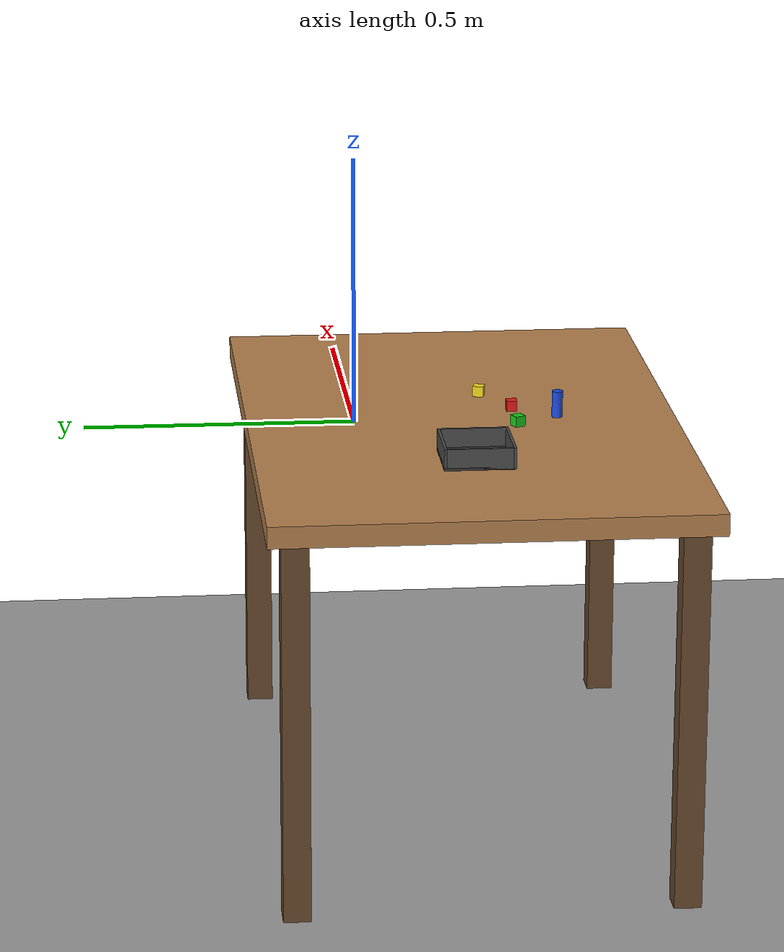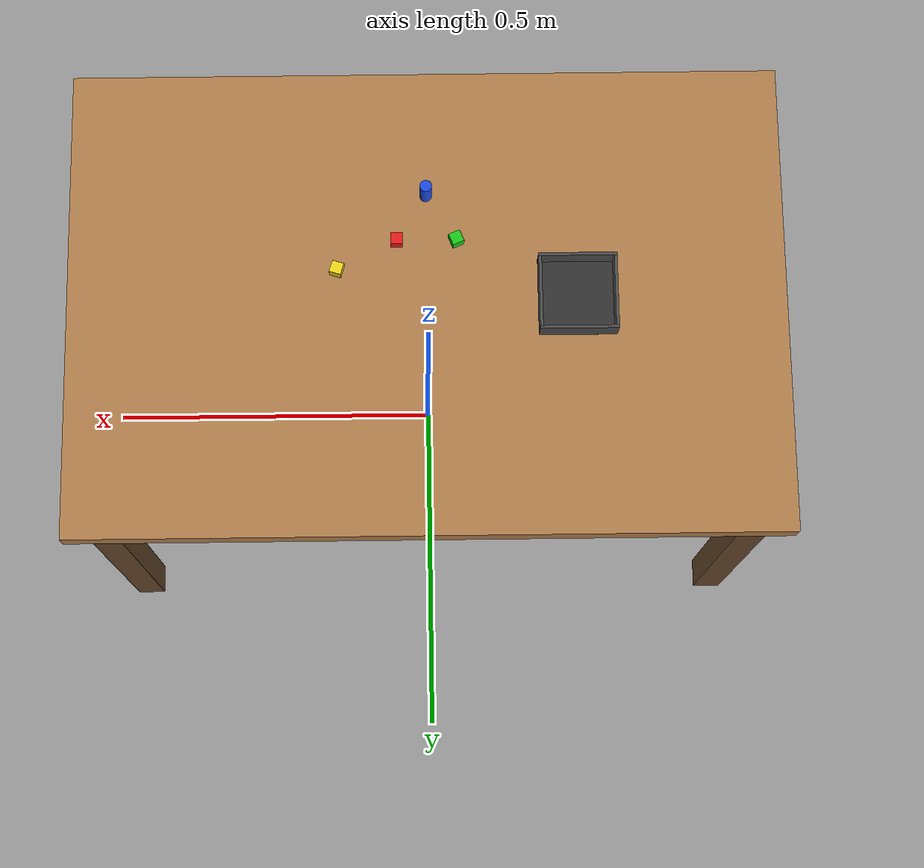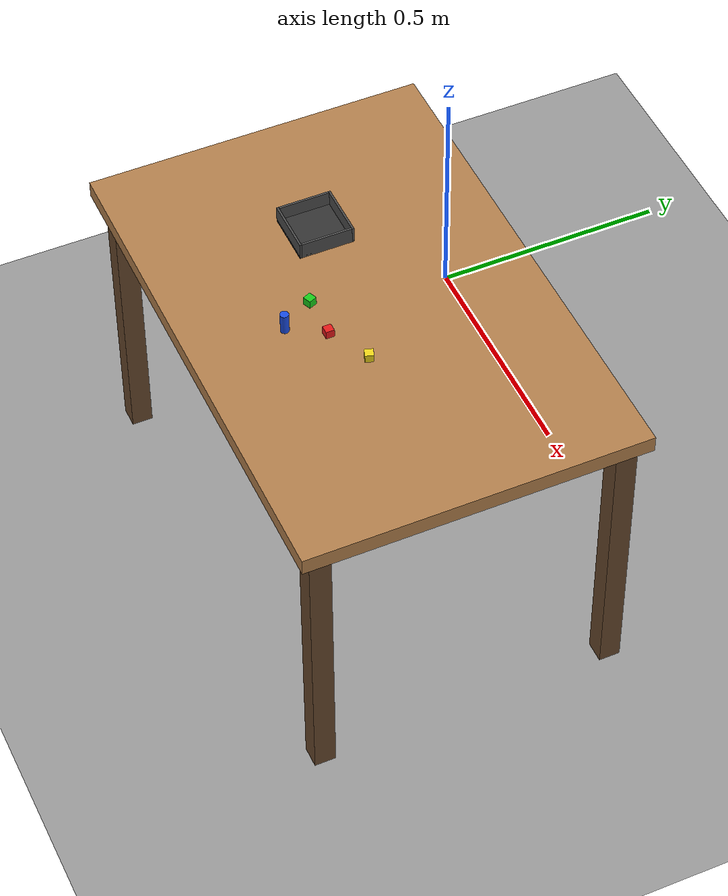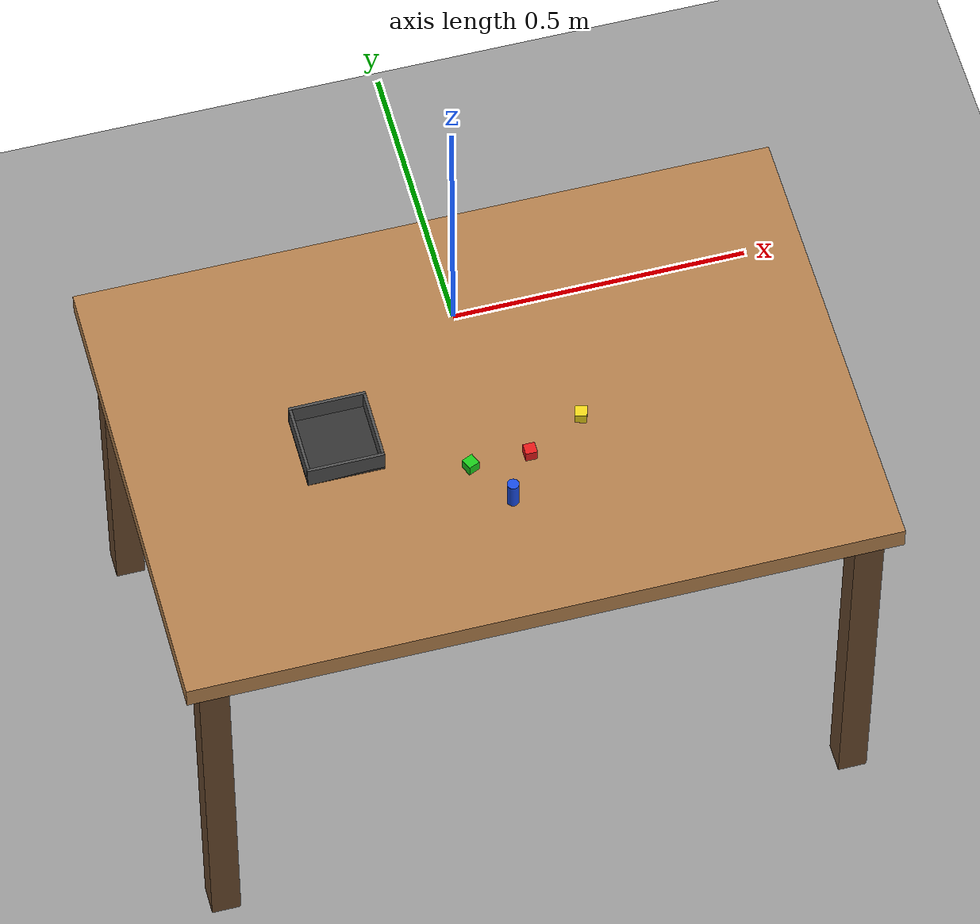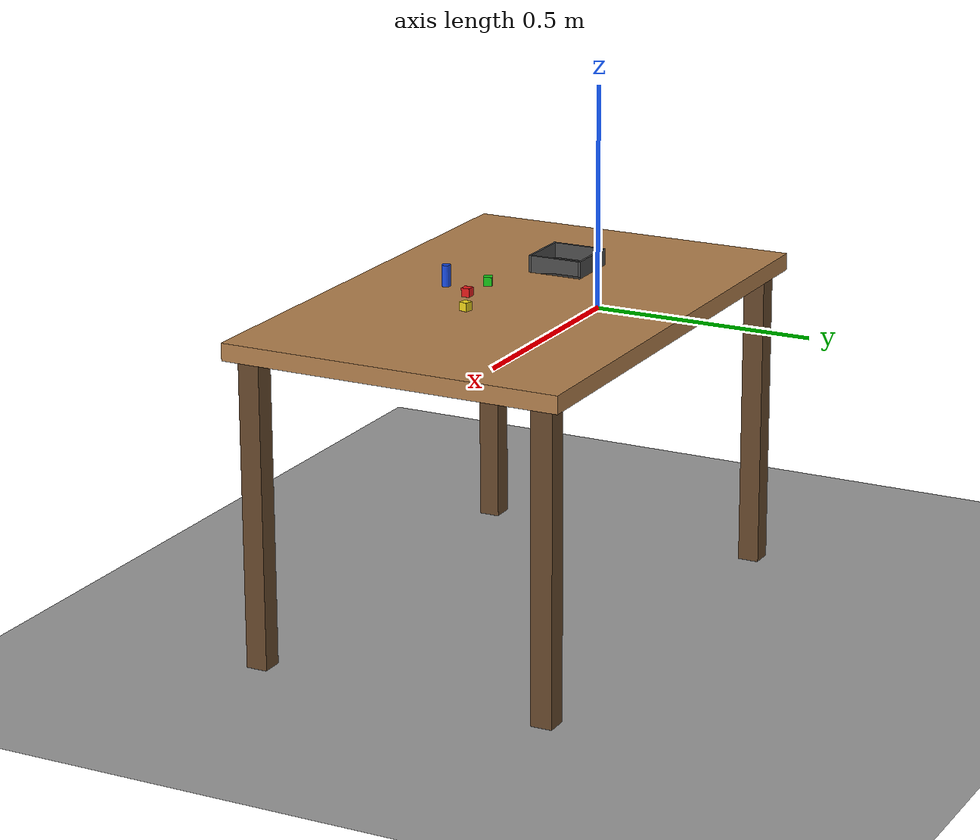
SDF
<?xml version="1.0"?>
<sdf version="1.6">
  <world name="pick_place">
    <physics name="1ms" type="ignored">
      <max_step_size>0.001</max_step_size>
      <real_time_factor>1.0</real_time_factor>
    </physics>

    <gui fullscreen="0">

      <!-- 3D scene -->
      <plugin filename="MinimalScene" name="3D View">
        <gz-gui>
          <title>3D View</title>
          <property type="bool" key="showTitleBar">false</property>
          <property type="string" key="state">docked</property>
        </gz-gui>

        <engine>ogre2</engine>
        <scene>scene</scene>
        <ambient_light>0.4 0.4 0.4</ambient_light>
        <background_color>0.8 0.8 0.8</background_color>
        <camera_pose>0.9 -1.1 0.6 0 0.4 2.36</camera_pose>
        <camera_clip>
          <near>0.25</near>
          <far>25000</far>
        </camera_clip>
      </plugin>

      <!-- Plugins that add functionality to the scene -->
      <plugin filename="EntityContextMenuPlugin" name="Entity context menu">
        <gz-gui>
          <property key="state" type="string">floating</property>
          <property key="width" type="double">5</property>
          <property key="height" type="double">5</property>
          <property key="showTitleBar" type="bool">false</property>
        </gz-gui>
      </plugin>
      <plugin filename="GzSceneManager" name="Scene Manager">
        <gz-gui>
          <property key="resizable" type="bool">false</property>
          <property key="width" type="double">5</property>
          <property key="height" type="double">5</property>
          <property key="state" type="string">floating</property>
          <property key="showTitleBar" type="bool">false</property>
        </gz-gui>
      </plugin>
      <plugin filename="InteractiveViewControl" name="Interactive view control">
        <gz-gui>
          <property key="resizable" type="bool">false</property>
          <property key="width" type="double">5</property>
          <property key="height" type="double">5</property>
          <property key="state" type="string">floating</property>
          <property key="showTitleBar" type="bool">false</property>
        </gz-gui>
      </plugin>
      <plugin filename="CameraTracking" name="Camera Tracking">
        <gz-gui>
          <property key="resizable" type="bool">false</property>
          <property key="width" type="double">5</property>
          <property key="height" type="double">5</property>
          <property key="state" type="string">floating</property>
          <property key="showTitleBar" type="bool">false</property>
        </gz-gui>
      </plugin>
      <plugin filename="MarkerManager" name="Marker manager">
        <gz-gui>
          <property key="resizable" type="bool">false</property>
          <property key="width" type="double">5</property>
          <property key="height" type="double">5</property>
          <property key="state" type="string">floating</property>
          <property key="showTitleBar" type="bool">false</property>
        </gz-gui>
      </plugin>
      <plugin filename="SelectEntities" name="Select Entities">
        <gz-gui>
          <anchors target="Select entities">
            <line own="right" target="right"/>
            <line own="top" target="top"/>
          </anchors>
          <property key="resizable" type="bool">false</property>
          <property key="width" type="double">5</property>
          <property key="height" type="double">5</property>
          <property key="state" type="string">floating</property>
          <property key="showTitleBar" type="bool">false</property>
        </gz-gui>
      </plugin>
      <plugin filename="VisualizationCapabilities" name="Visualization Capabilities">
        <gz-gui>
          <property key="resizable" type="bool">false</property>
          <property key="width" type="double">5</property>
          <property key="height" type="double">5</property>
          <property key="state" type="string">floating</property>
          <property key="showTitleBar" type="bool">false</property>
        </gz-gui>
      </plugin>

      <plugin filename="Spawn" name="Spawn Entities">
        <gz-gui>
          <anchors target="Select entities">
            <line own="right" target="right"/>
            <line own="top" target="top"/>
          </anchors>
          <property key="resizable" type="bool">false</property>
          <property key="width" type="double">5</property>
          <property key="height" type="double">5</property>
          <property key="state" type="string">floating</property>
          <property key="showTitleBar" type="bool">false</property>
        </gz-gui>
      </plugin>

      <!-- World control -->
      <plugin filename="WorldControl" name="World control">
        <gz-gui>
          <title>World control</title>
          <property type="bool" key="showTitleBar">false</property>
          <property type="bool" key="resizable">false</property>
          <property type="double" key="height">72</property>
          <property type="double" key="width">180</property>
          <property type="double" key="z">1</property>

          <property type="string" key="state">floating</property>
          <anchors target="3D View">
            <line own="left" target="left"/>
            <line own="bottom" target="bottom"/>
          </anchors>
        </gz-gui>

        <play_pause>true</play_pause>
        <step>true</step>
        <start_paused>true</start_paused>
        <use_event>true</use_event>

      </plugin>

      <!-- World statistics -->
      <plugin filename="WorldStats" name="World stats">
        <gz-gui>
          <title>World stats</title>
          <property type="bool" key="showTitleBar">false</property>
          <property type="bool" key="resizable">false</property>
          <property type="double" key="height">110</property>
          <property type="double" key="width">290</property>
          <property type="double" key="z">1</property>

          <property type="string" key="state">floating</property>
          <anchors target="3D View">
            <line own="right" target="right"/>
            <line own="bottom" target="bottom"/>
          </anchors>
        </gz-gui>

        <sim_time>true</sim_time>
        <real_time>true</real_time>
        <real_time_factor>true</real_time_factor>
        <iterations>true</iterations>
      </plugin>

      <!-- Insert simple shapes -->
      <plugin filename="Shapes" name="Shapes">
        <gz-gui>
          <property key="resizable" type="bool">false</property>
          <property key="x" type="double">0</property>
          <property key="y" type="double">0</property>
          <property key="width" type="double">250</property>
          <property key="height" type="double">50</property>
          <property key="state" type="string">floating</property>
          <property key="showTitleBar" type="bool">false</property>
          <property key="cardBackground" type="string">#666666</property>
        </gz-gui>
      </plugin>

      <!-- Insert lights -->
      <plugin filename="Lights" name="Lights">
        <gz-gui>
          <property key="resizable" type="bool">false</property>
          <property key="x" type="double">250</property>
          <property key="y" type="double">0</property>
          <property key="width" type="double">150</property>
          <property key="height" type="double">50</property>
          <property key="state" type="string">floating</property>
          <property key="showTitleBar" type="bool">false</property>
          <property key="cardBackground" type="string">#666666</property>
        </gz-gui>
      </plugin>

      <!-- Translate / rotate -->
      <plugin filename="TransformControl" name="Transform control">
        <gz-gui>
          <property key="resizable" type="bool">false</property>
          <property key="x" type="double">0</property>
          <property key="y" type="double">50</property>
          <property key="width" type="double">250</property>
          <property key="height" type="double">50</property>
          <property key="state" type="string">floating</property>
          <property key="showTitleBar" type="bool">false</property>
          <property key="cardBackground" type="string">#777777</property>
        </gz-gui>
      </plugin>

      <!-- Screenshot -->
      <plugin filename="Screenshot" name="Screenshot">
        <gz-gui>
          <property key="resizable" type="bool">false</property>
          <property key="x" type="double">250</property>
          <property key="y" type="double">50</property>
          <property key="width" type="double">50</property>
          <property key="height" type="double">50</property>
          <property key="state" type="string">floating</property>
          <property key="showTitleBar" type="bool">false</property>
          <property key="cardBackground" type="string">#777777</property>
        </gz-gui>
      </plugin>

      <!-- Video recorder -->
      <plugin filename="VideoRecorder" name="VideoRecorder">
        <gz-gui>
          <property key="resizable" type="bool">false</property>
          <property key="x" type="double">300</property>
          <property key="y" type="double">50</property>
          <property key="width" type="double">50</property>
          <property key="height" type="double">50</property>
          <property key="state" type="string">floating</property>
          <property key="showTitleBar" type="bool">false</property>
          <property key="cardBackground" type="string">#777777</property>
        </gz-gui>

        <record_video>
          <use_sim_time>true</use_sim_time>
          <lockstep>true</lockstep>
          <bitrate>4000000</bitrate>
        </record_video>
      </plugin>

      <!-- Inspector -->
      <plugin filename="ComponentInspector" name="Component inspector">
        <gz-gui>
          <property type="string" key="state">docked_collapsed</property>
        </gz-gui>
      </plugin>

      <!-- Entity tree -->
      <plugin filename="EntityTree" name="Entity tree">
        <gz-gui>
          <property type="string" key="state">docked_collapsed</property>
        </gz-gui>
      </plugin>

      <!-- View angle -->
      <plugin filename="ViewAngle" name="View angle">
        <gz-gui>
          <property type="string" key="state">docked_collapsed</property>
        </gz-gui>
      </plugin>

    </gui>

    <gravity>0 0 -9.81</gravity>

    <light type="directional" name="sun">
      <cast_shadows>true</cast_shadows>
      <pose>0 0 10 0 0 0</pose>
      <diffuse>0.8 0.8 0.8 1</diffuse>
      <specular>0.2 0.2 0.2 1</specular>
      <attenuation>
        <range>1000</range>
        <constant>0.9</constant>
        <linear>0.01</linear>
        <quadratic>0.001</quadratic>
      </attenuation>
      <direction>-0.5 0.1 -0.9</direction>
    </light>

    <model name="ground_plane">
      <static>true</static>
      <pose>0 0 -0.75 0 0 0</pose>
      <link name="link">
        <collision name="collision">
          <geometry>
            <plane>
              <normal>0 0 1</normal>
              <size>10 10</size>
            </plane>
          </geometry>
        </collision>
        <visual name="visual">
          <geometry>
            <plane>
              <normal>0 0 1</normal>
              <size>10 10</size>
            </plane>
          </geometry>
          <material>
            <ambient>0.6 0.6 0.6 1</ambient>
            <diffuse>0.6 0.6 0.6 1</diffuse>
            <specular>0.1 0.1 0.1 1</specular>
          </material>
        </visual>
      </link>
    </model>

    <!-- Table: 1.2 x 0.8 m top, surface at z = 0, robot near the back edge -->
    <model name="table">
      <static>true</static>
      <pose>0 -0.2 0 0 0 0</pose>
      <link name="link">
        <collision name="top_collision">
          <pose>0 0 -0.02 0 0 0</pose>
          <geometry>
            <box>
              <size>1.2 0.8 0.04</size>
            </box>
          </geometry>
          <surface>
            <friction>
              <ode>
                <mu>1.0</mu>
                <mu2>1.0</mu2>
              </ode>
            </friction>
          </surface>
        </collision>
        <visual name="top_visual">
          <pose>0 0 -0.02 0 0 0</pose>
          <geometry>
            <box>
              <size>1.2 0.8 0.04</size>
            </box>
          </geometry>
          <material>
            <ambient>0.7 0.5 0.3 1</ambient>
            <diffuse>0.7 0.5 0.3 1</diffuse>
            <specular>0.1 0.1 0.1 1</specular>
          </material>
        </visual>
        <visual name="leg_fl">
          <pose>0.55 -0.35 -0.395 0 0 0</pose>
          <geometry><box><size>0.05 0.05 0.71</size></box></geometry>
          <material>
            <ambient>0.4 0.28 0.17 1</ambient>
            <diffuse>0.4 0.28 0.17 1</diffuse>
          </material>
        </visual>
        <visual name="leg_fr">
          <pose>-0.55 -0.35 -0.395 0 0 0</pose>
          <geometry><box><size>0.05 0.05 0.71</size></box></geometry>
          <material>
            <ambient>0.4 0.28 0.17 1</ambient>
            <diffuse>0.4 0.28 0.17 1</diffuse>
          </material>
        </visual>
        <visual name="leg_bl">
          <pose>0.55 0.35 -0.395 0 0 0</pose>
          <geometry><box><size>0.05 0.05 0.71</size></box></geometry>
          <material>
            <ambient>0.4 0.28 0.17 1</ambient>
            <diffuse>0.4 0.28 0.17 1</diffuse>
          </material>
        </visual>
        <visual name="leg_br">
          <pose>-0.55 0.35 -0.395 0 0 0</pose>
          <geometry><box><size>0.05 0.05 0.71</size></box></geometry>
          <material>
            <ambient>0.4 0.28 0.17 1</ambient>
            <diffuse>0.4 0.28 0.17 1</diffuse>
          </material>
        </visual>
      </link>
    </model>

    <!-- Drop-off bin: 12 x 12 cm inside, 4 cm tall walls -->
    <model name="bin">
      <static>true</static>
      <pose>-0.25 -0.2 0 0 0 0</pose>
      <link name="link">
        <collision name="floor_c">
          <pose>0 0 0.0025 0 0 0</pose>
          <geometry><box><size>0.13 0.13 0.005</size></box></geometry>
        </collision>
        <visual name="floor_v">
          <pose>0 0 0.0025 0 0 0</pose>
          <geometry><box><size>0.13 0.13 0.005</size></box></geometry>
          <material>
            <ambient>0.2 0.2 0.2 1</ambient>
            <diffuse>0.2 0.2 0.2 1</diffuse>
          </material>
        </visual>
        <collision name="wall_n_c">
          <pose>0 0.0625 0.02 0 0 0</pose>
          <geometry><box><size>0.13 0.005 0.04</size></box></geometry>
        </collision>
        <visual name="wall_n_v">
          <pose>0 0.0625 0.02 0 0 0</pose>
          <geometry><box><size>0.13 0.005 0.04</size></box></geometry>
          <material>
            <ambient>0.3 0.3 0.3 1</ambient>
            <diffuse>0.3 0.3 0.3 1</diffuse>
          </material>
        </visual>
        <collision name="wall_s_c">
          <pose>0 -0.0625 0.02 0 0 0</pose>
          <geometry><box><size>0.13 0.005 0.04</size></box></geometry>
        </collision>
        <visual name="wall_s_v">
          <pose>0 -0.0625 0.02 0 0 0</pose>
          <geometry><box><size>0.13 0.005 0.04</size></box></geometry>
          <material>
            <ambient>0.3 0.3 0.3 1</ambient>
            <diffuse>0.3 0.3 0.3 1</diffuse>
          </material>
        </visual>
        <collision name="wall_e_c">
          <pose>0.0625 0 0.02 0 0 0</pose>
          <geometry><box><size>0.005 0.12 0.04</size></box></geometry>
        </collision>
        <visual name="wall_e_v">
          <pose>0.0625 0 0.02 0 0 0</pose>
          <geometry><box><size>0.005 0.12 0.04</size></box></geometry>
          <material>
            <ambient>0.3 0.3 0.3 1</ambient>
            <diffuse>0.3 0.3 0.3 1</diffuse>
          </material>
        </visual>
        <collision name="wall_w_c">
          <pose>-0.0625 0 0.02 0 0 0</pose>
          <geometry><box><size>0.005 0.12 0.04</size></box></geometry>
        </collision>
        <visual name="wall_w_v">
          <pose>-0.0625 0 0.02 0 0 0</pose>
          <geometry><box><size>0.005 0.12 0.04</size></box></geometry>
          <material>
            <ambient>0.3 0.3 0.3 1</ambient>
            <diffuse>0.3 0.3 0.3 1</diffuse>
          </material>
        </visual>
      </link>
    </model>

    <!-- Graspable objects: 2 cm cubes, 20 g -->
    <model name="red_cube">
      <pose>0.05 -0.30 0.01 0 0 0</pose>
      <link name="link">
        <inertial>
          <mass>0.02</mass>
          <inertia>
            <ixx>1.333e-6</ixx><iyy>1.333e-6</iyy><izz>1.333e-6</izz>
            <ixy>0</ixy><ixz>0</ixz><iyz>0</iyz>
          </inertia>
        </inertial>
        <collision name="collision">
          <geometry><box><size>0.02 0.02 0.02</size></box></geometry>
          <surface>
            <friction><ode><mu>1.0</mu><mu2>1.0</mu2></ode></friction>
          </surface>
        </collision>
        <visual name="visual">
          <geometry><box><size>0.02 0.02 0.02</size></box></geometry>
          <material>
            <ambient>0.9 0.1 0.1 1</ambient>
            <diffuse>0.9 0.1 0.1 1</diffuse>
          </material>
        </visual>
      </link>
    </model>

    <model name="green_cube">
      <pose>-0.05 -0.30 0.01 0 0 0.4</pose>
      <link name="link">
        <inertial>
          <mass>0.02</mass>
          <inertia>
            <ixx>1.333e-6</ixx><iyy>1.333e-6</iyy><izz>1.333e-6</izz>
            <ixy>0</ixy><ixz>0</ixz><iyz>0</iyz>
          </inertia>
        </inertial>
        <collision name="collision">
          <geometry><box><size>0.02 0.02 0.02</size></box></geometry>
          <surface>
            <friction><ode><mu>1.0</mu><mu2>1.0</mu2></ode></friction>
          </surface>
        </collision>
        <visual name="visual">
          <geometry><box><size>0.02 0.02 0.02</size></box></geometry>
          <material>
            <ambient>0.1 0.8 0.1 1</ambient>
            <diffuse>0.1 0.8 0.1 1</diffuse>
          </material>
        </visual>
      </link>
    </model>

    <model name="yellow_cube">
      <pose>0.15 -0.25 0.01 0 0 -0.3</pose>
      <link name="link">
        <inertial>
          <mass>0.02</mass>
          <inertia>
            <ixx>1.333e-6</ixx><iyy>1.333e-6</iyy><izz>1.333e-6</izz>
            <ixy>0</ixy><ixz>0</ixz><iyz>0</iyz>
          </inertia>
        </inertial>
        <collision name="collision">
          <geometry><box><size>0.02 0.02 0.02</size></box></geometry>
          <surface>
            <friction><ode><mu>1.0</mu><mu2>1.0</mu2></ode></friction>
          </surface>
        </collision>
        <visual name="visual">
          <geometry><box><size>0.02 0.02 0.02</size></box></geometry>
          <material>
            <ambient>0.95 0.85 0.1 1</ambient>
            <diffuse>0.95 0.85 0.1 1</diffuse>
          </material>
        </visual>
      </link>
    </model>

    <!-- Upright cylinder: 2 cm diameter, 5 cm tall, 20 g -->
    <model name="blue_cylinder">
      <pose>0.0 -0.38 0.025 0 0 0</pose>
      <link name="link">
        <inertial>
          <mass>0.02</mass>
          <inertia>
            <ixx>4.667e-6</ixx><iyy>4.667e-6</iyy><izz>1.0e-6</izz>
            <ixy>0</ixy><ixz>0</ixz><iyz>0</iyz>
          </inertia>
        </inertial>
        <collision name="collision">
          <geometry><cylinder><radius>0.01</radius><length>0.05</length></cylinder></geometry>
          <surface>
            <friction><ode><mu>1.0</mu><mu2>1.0</mu2></ode></friction>
          </surface>
        </collision>
        <visual name="visual">
          <geometry><cylinder><radius>0.01</radius><length>0.05</length></cylinder></geometry>
          <material>
            <ambient>0.1 0.3 0.9 1</ambient>
            <diffuse>0.1 0.3 0.9 1</diffuse>
          </material>
        </visual>
      </link>
    </model>

  </world>
</sdf>
